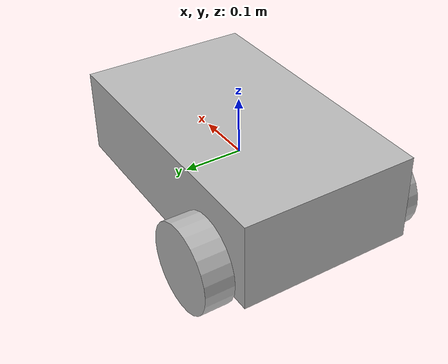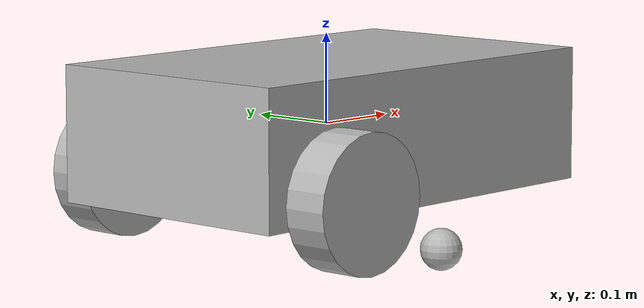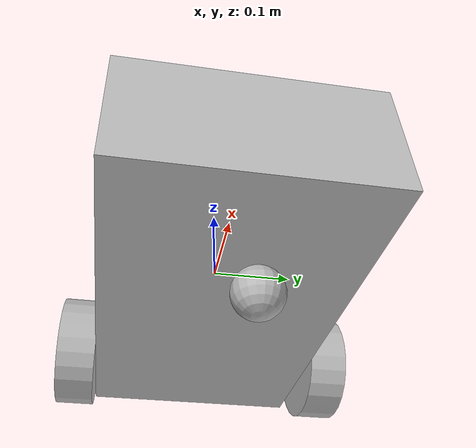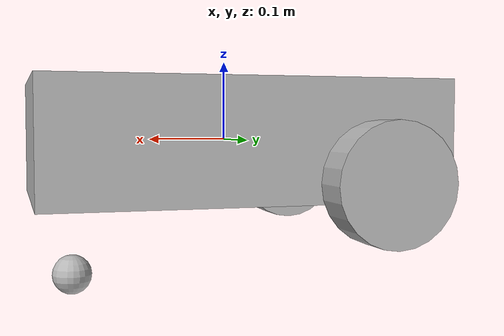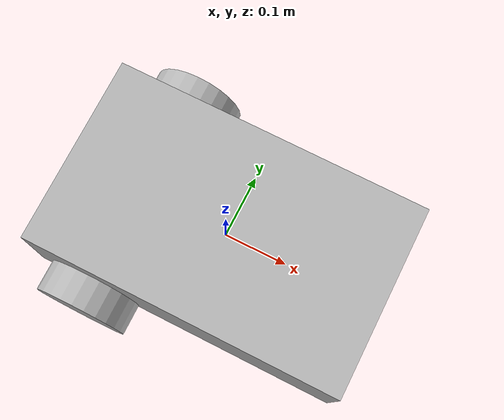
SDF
<?xml version="1.0" ?>
<sdf version='1.5'>
  <model name='ros_dd_world_scaled_1_2_stabilized'>
    <link name='body_link'>
      <inertial>
        <pose>0 0 0 0 -0 0</pose>
        <mass>5</mass>
        <inertia>
          <ixx>0.046875</ixx>
          <ixy>0</ixy>
          <ixz>0</ixz>
          <iyy>0.1135415</iyy>
          <iyz>0</iyz>
          <izz>0.1416665</izz>
        </inertia>
      </inertial>
      <collision name='body_link_collision'>
        <pose>0 0 0 0 -0 0</pose>
        <geometry>
          <box>
            <size>0.5 0.3 0.15</size>
          </box>
        </geometry>
      </collision>
      <visual name='body_link_visual'>
        <pose>0 0 0 0 -0 0</pose>
        <geometry>
          <box>
            <size>0.5 0.3 0.15</size>
          </box>
        </geometry>
      </visual>
    </link>

    <joint name='wheel1_joint' type='revolute'>
      <pose relative_to='body_link'>-0.15 -0.175 -0.05 0 -0 0</pose>
      <parent>body_link</parent>
      <child>wheel1_link</child>
      <axis>
        <xyz>0 1 0</xyz>
        <limit>
          <lower>-1e+16</lower>
          <upper>1e+16</upper>
        </limit>
        <dynamics>
          <spring_reference>0</spring_reference>
          <spring_stiffness>0</spring_stiffness>
        </dynamics>
      </axis>
    </joint>
    <link name='wheel1_link'>
      <pose relative_to='wheel1_joint'>0 0 0 0 -0 0</pose>
      <inertial>
        <pose>0 0 0 0 -0 0</pose>
        <mass>0.5</mass>
        <inertia>
          <ixx>0.00096875</ixx>
          <ixy>0</ixy>
          <ixz>0</ixz>
          <iyy>0.00096875</iyy>
          <iyz>0</iyz>
          <izz>0.00140625</izz>
        </inertia>
      </inertial>
      <collision name='wheel1_link_collision'>
        <pose>0 0 0 1.57079 -0 0</pose>
        <geometry>
          <cylinder>
            <length>0.05</length>
            <radius>0.075</radius>
          </cylinder>
        </geometry>
      </collision>
      <visual name='wheel1_link_visual'>
        <pose>0 0 0 1.57079 -0 0</pose>
        <geometry>
          <cylinder>
            <length>0.05</length>
            <radius>0.075</radius>
          </cylinder>
        </geometry>
      </visual>
    </link>

    <joint name='wheel2_joint' type='revolute'>
      <pose relative_to='body_link'>-0.15 0.175 -0.05 0 -0 0</pose>
      <parent>body_link</parent>
      <child>wheel2_link</child>
      <axis>
        <xyz>0 1 0</xyz>
        <limit>
          <lower>-1e+16</lower>
          <upper>1e+16</upper>
        </limit>
        <dynamics>
          <spring_reference>0</spring_reference>
          <spring_stiffness>0</spring_stiffness>
        </dynamics>
      </axis>
    </joint>
    <link name='wheel2_link'>
      <pose relative_to='wheel2_joint'>0 0 0 0 -0 0</pose>
      <inertial>
        <pose>0 0 0 0 -0 0</pose>
        <mass>0.5</mass>
        <inertia>
          <ixx>0.00096875</ixx>
          <ixy>0</ixy>
          <ixz>0</ixz>
          <iyy>0.00096875</iyy>
          <iyz>0</iyz>
          <izz>0.00140625</izz>
        </inertia>
      </inertial>
      <collision name='wheel2_link_collision'>
        <pose>0 0 0 1.57079 -0 0</pose>
        <geometry>
          <cylinder>
            <length>0.05</length>
            <radius>0.075</radius>
          </cylinder>
        </geometry>
      </collision>
      <visual name='wheel2_link_visual'>
        <pose>0 0 0 1.57079 -0 0</pose>
        <geometry>
          <cylinder>
            <length>0.05</length>
            <radius>0.075</radius>
          </cylinder>
        </geometry>
      </visual>
    </link>

    <joint name='caster_joint' type='fixed'>
      <pose relative_to='body_link'>0.2 0 -0.17 0 -0 0</pose>
      <parent>body_link</parent>
      <child>caster_link</child>
    </joint>
    <link name='caster_link'>
      <pose relative_to='caster_joint'>0 0 0 0 -0 0</pose>
      <inertial>
        <pose>0 0 0 0 -0 0</pose>
        <mass>0.08</mass>
        <inertia>
          <ixx>0.000002</ixx>
          <ixy>0</ixy>
          <ixz>0</ixz>
          <iyy>0.000002</iyy>
          <iyz>0</iyz>
          <izz>0.000002</izz>
        </inertia>
      </inertial>
      <collision name='caster_link_collision'>
        <pose>0 0 0 0 -0 0</pose>
        <geometry>
          <sphere>
            <radius>0.025</radius>
          </sphere>
        </geometry>
        <surface>
          <friction>
            <ode>
              <mu>0.0</mu>
              <mu2>0.0</mu2>
            </ode>
          </friction>
        </surface>
      </collision>
      <visual name='caster_link_visual'>
        <pose>0 0 0 0 -0 0</pose>
        <geometry>
          <sphere>
            <radius>0.025</radius>
          </sphere>
        </geometry>
      </visual>
    </link>

  </model>
</sdf>
